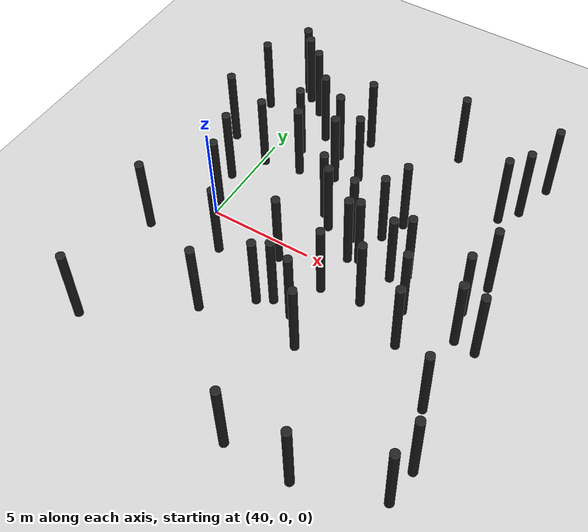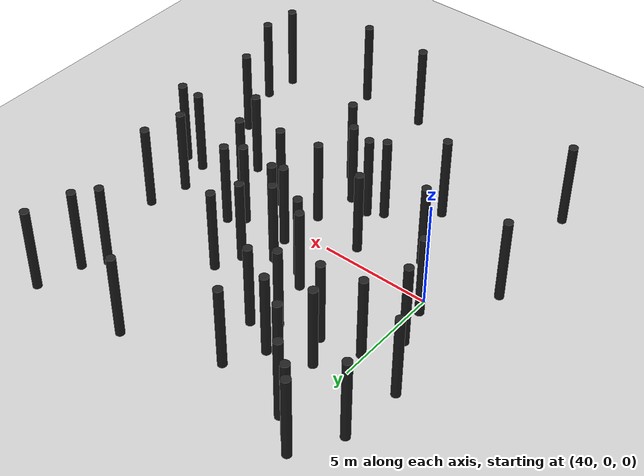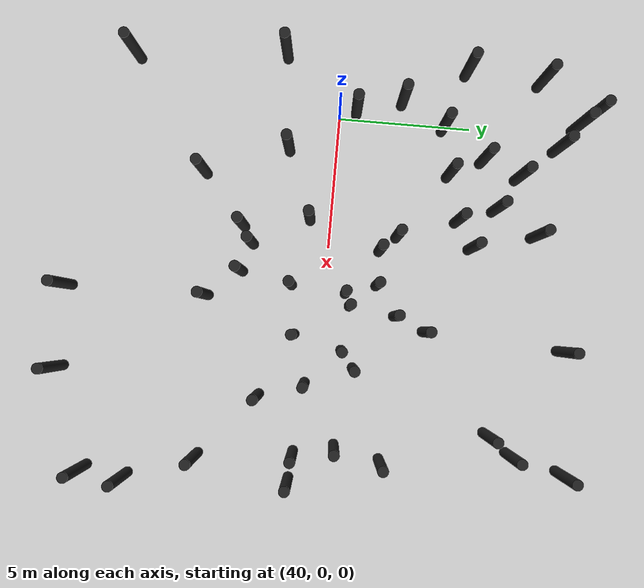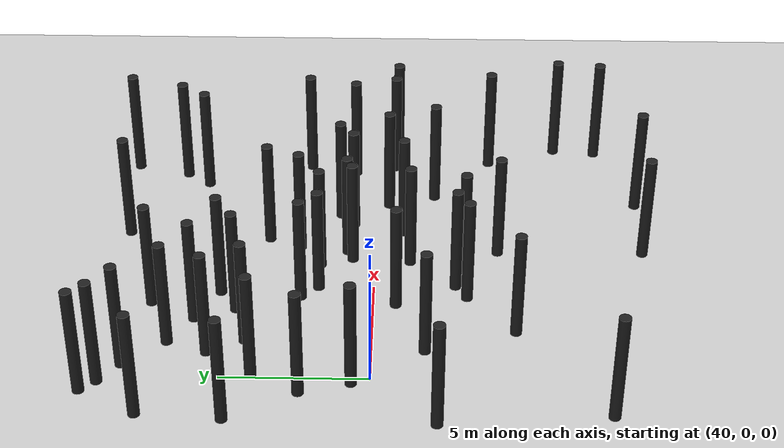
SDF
<sdf version="1.5">
 <world name="default">
  <model name="ground_plane">
   <static>1</static>
   <link name="link">
    <collision name="collision">
     <geometry><plane><normal>0 0 1</normal><size>200 200</size></plane></geometry>
     <surface><friction><ode><mu>100</mu><mu2>50</mu2></ode></friction></surface>
    </collision>
    <visual name="visual">
     <cast_shadows>0</cast_shadows>
     <geometry><plane><normal>0 0 1</normal><size>200 200</size></plane></geometry>
     <material>
      <script><uri>file://media/materials/scripts/gazebo.material</uri><name>Gazebo/Grey</name></script>
     </material>
    </visual>
   </link>
  </model>
  <model name="forest_clone_0">
   <pose>47.8774 3.82717 -0.003373 0 -0 0</pose>
   <static>1</static>
   <link name="cylinder::link">
    <inertial>
     <mass>1</mass>
     <inertia><ixx>0.083</ixx><ixy>0</ixy><ixz>0</ixz><iyy>0.083</iyy><iyz>0</iyz><izz>0.083</izz></inertia>
    </inertial>
    <collision name="collision">
     <geometry><cylinder><radius>0.2</radius><length>4</length></cylinder></geometry>
    </collision>
    <visual name="visual">
     <geometry><cylinder><radius>0.2</radius><length>4</length></cylinder></geometry>
     <material>
      <script><uri>file://media/materials/scripts/gazebo.material</uri><name>Gazebo/Black</name></script>
     </material>
    </visual>
    <pose>0 0 2 0 -0 0</pose>
   </link>
  </model>
  <model name="forest_clone_2">
   <pose>39.7784 0.625088 -0.004027 0 -0 0</pose>
   <static>1</static>
   <link name="cylinder::link">
    <inertial>
     <mass>1</mass>
     <inertia><ixx>0.083</ixx><ixy>0</ixy><ixz>0</ixz><iyy>0.083</iyy><iyz>0</iyz><izz>0.083</izz></inertia>
    </inertial>
    <collision name="collision">
     <geometry><cylinder><radius>0.2</radius><length>4</length></cylinder></geometry>
    </collision>
    <visual name="visual">
     <geometry><cylinder><radius>0.2</radius><length>4</length></cylinder></geometry>
     <material>
      <script><uri>file://media/materials/scripts/gazebo.material</uri><name>Gazebo/Black</name></script>
     </material>
    </visual>
    <pose>0 0 2 0 -0 0</pose>
   </link>
  </model>
  <model name="forest_clone_4">
   <pose>41.9186 4.26882 0.003569 0 -0 0</pose>
   <static>1</static>
   <link name="cylinder::link">
    <inertial>
     <mass>1</mass>
     <inertia><ixx>0.083</ixx><ixy>0</ixy><ixz>0</ixz><iyy>0.083</iyy><iyz>0</iyz><izz>0.083</izz></inertia>
    </inertial>
    <collision name="collision">
     <geometry><cylinder><radius>0.2</radius><length>4</length></cylinder></geometry>
    </collision>
    <visual name="visual">
     <geometry><cylinder><radius>0.2</radius><length>4</length></cylinder></geometry>
     <material>
      <script><uri>file://media/materials/scripts/gazebo.material</uri><name>Gazebo/Black</name></script>
     </material>
    </visual>
    <pose>0 0 2 0 -0 0</pose>
   </link>
  </model>
  <model name="forest_clone_6">
   <pose>51.4846 6.42449 0.004474 0 -0 0</pose>
   <static>1</static>
   <link name="cylinder::link">
    <inertial>
     <mass>1</mass>
     <inertia><ixx>0.083</ixx><ixy>0</ixy><ixz>0</ixz><iyy>0.083</iyy><iyz>0</iyz><izz>0.083</izz></inertia>
    </inertial>
    <collision name="collision">
     <geometry><cylinder><radius>0.2</radius><length>4</length></cylinder></geometry>
    </collision>
    <visual name="visual">
     <geometry><cylinder><radius>0.2</radius><length>4</length></cylinder></geometry>
     <material>
      <script><uri>file://media/materials/scripts/gazebo.material</uri><name>Gazebo/Black</name></script>
     </material>
    </visual>
    <pose>0 0 2 0 -0 0</pose>
   </link>
  </model>
  <model name="forest_clone_9">
   <pose>48.8325 0.794509 0.003333 0 -0 0</pose>
   <static>1</static>
   <link name="cylinder::link">
    <inertial>
     <mass>1</mass>
     <inertia><ixx>0.083</ixx><ixy>0</ixy><ixz>0</ixz><iyy>0.083</iyy><iyz>0</iyz><izz>0.083</izz></inertia>
    </inertial>
    <collision name="collision">
     <geometry><cylinder><radius>0.2</radius><length>4</length></cylinder></geometry>
    </collision>
    <visual name="visual">
     <geometry><cylinder><radius>0.2</radius><length>4</length></cylinder></geometry>
     <material>
      <script><uri>file://media/materials/scripts/gazebo.material</uri><name>Gazebo/Black</name></script>
     </material>
    </visual>
    <pose>0 0 2 0 -0 0</pose>
   </link>
  </model>
  <model name="forest_clone_20">
   <pose>40.1537 3.9289 0.004832 0 -0 0</pose>
   <static>1</static>
   <link name="cylinder::link">
    <inertial>
     <mass>1</mass>
     <inertia><ixx>0.083</ixx><ixy>0</ixy><ixz>0</ixz><iyy>0.083</iyy><iyz>0</iyz><izz>0.083</izz></inertia>
    </inertial>
    <collision name="collision">
     <geometry><cylinder><radius>0.2</radius><length>4</length></cylinder></geometry>
    </collision>
    <visual name="visual">
     <geometry><cylinder><radius>0.2</radius><length>4</length></cylinder></geometry>
     <material>
      <script><uri>file://media/materials/scripts/gazebo.material</uri><name>Gazebo/Black</name></script>
     </material>
    </visual>
    <pose>0 0 2 0 -0 0</pose>
   </link>
  </model>
  <model name="forest_clone_32">
   <pose>46.2905 1.91843 0.004142 0 -0 0</pose>
   <static>1</static>
   <link name="cylinder::link">
    <inertial>
     <mass>1</mass>
     <inertia><ixx>0.083</ixx><ixy>0</ixy><ixz>0</ixz><iyy>0.083</iyy><iyz>0</iyz><izz>0.083</izz></inertia>
    </inertial>
    <collision name="collision">
     <geometry><cylinder><radius>0.2</radius><length>4</length></cylinder></geometry>
    </collision>
    <visual name="visual">
     <geometry><cylinder><radius>0.2</radius><length>4</length></cylinder></geometry>
     <material>
      <script><uri>file://media/materials/scripts/gazebo.material</uri><name>Gazebo/Black</name></script>
     </material>
    </visual>
    <pose>0 0 2 0 -0 0</pose>
   </link>
  </model>
  <model name="forest_clone_33">
   <pose>37.8248 -2.16475 0.001127 0 -0 0</pose>
   <static>1</static>
   <link name="cylinder::link">
    <inertial>
     <mass>1</mass>
     <inertia><ixx>0.083</ixx><ixy>0</ixy><ixz>0</ixz><iyy>0.083</iyy><iyz>0</iyz><izz>0.083</izz></inertia>
    </inertial>
    <collision name="collision">
     <geometry><cylinder><radius>0.2</radius><length>4</length></cylinder></geometry>
    </collision>
    <visual name="visual">
     <geometry><cylinder><radius>0.2</radius><length>4</length></cylinder></geometry>
     <material>
      <script><uri>file://media/materials/scripts/gazebo.material</uri><name>Gazebo/Black</name></script>
     </material>
    </visual>
    <pose>0 0 2 0 -0 0</pose>
   </link>
  </model>
  <model name="forest_clone_35">
   <pose>38.3017 -7.80817 0.004289 0 -0 0</pose>
   <static>1</static>
   <link name="cylinder::link">
    <inertial>
     <mass>1</mass>
     <inertia><ixx>0.083</ixx><ixy>0</ixy><ixz>0</ixz><iyy>0.083</iyy><iyz>0</iyz><izz>0.083</izz></inertia>
    </inertial>
    <collision name="collision">
     <geometry><cylinder><radius>0.2</radius><length>4</length></cylinder></geometry>
    </collision>
    <visual name="visual">
     <geometry><cylinder><radius>0.2</radius><length>4</length></cylinder></geometry>
     <material>
      <script><uri>file://media/materials/scripts/gazebo.material</uri><name>Gazebo/Black</name></script>
     </material>
    </visual>
    <pose>0 0 2 0 -0 0</pose>
   </link>
  </model>
  <model name="forest_clone_39">
   <pose>41.8105 6.88139 -0.00208 0 -0 0</pose>
   <static>1</static>
   <link name="cylinder::link">
    <inertial>
     <mass>1</mass>
     <inertia><ixx>0.083</ixx><ixy>0</ixy><ixz>0</ixz><iyy>0.083</iyy><iyz>0</iyz><izz>0.083</izz></inertia>
    </inertial>
    <collision name="collision">
     <geometry><cylinder><radius>0.2</radius><length>4</length></cylinder></geometry>
    </collision>
    <visual name="visual">
     <geometry><cylinder><radius>0.2</radius><length>4</length></cylinder></geometry>
     <material>
      <script><uri>file://media/materials/scripts/gazebo.material</uri><name>Gazebo/Black</name></script>
     </material>
    </visual>
    <pose>0 0 2 0 -0 0</pose>
   </link>
  </model>
  <model name="forest_clone_40">
   <pose>41.2674 5.5002 0.002673 0 -0 0</pose>
   <static>1</static>
   <link name="cylinder::link">
    <inertial>
     <mass>1</mass>
     <inertia><ixx>0.083</ixx><ixy>0</ixy><ixz>0</ixz><iyy>0.083</iyy><iyz>0</iyz><izz>0.083</izz></inertia>
    </inertial>
    <collision name="collision">
     <geometry><cylinder><radius>0.2</radius><length>4</length></cylinder></geometry>
    </collision>
    <visual name="visual">
     <geometry><cylinder><radius>0.2</radius><length>4</length></cylinder></geometry>
     <material>
      <script><uri>file://media/materials/scripts/gazebo.material</uri><name>Gazebo/Black</name></script>
     </material>
    </visual>
    <pose>0 0 2 0 -0 0</pose>
   </link>
  </model>
  <model name="forest_clone_41">
   <pose>44.9711 1.92104 -0.002985 0 -0 0</pose>
   <static>1</static>
   <link name="cylinder::link">
    <inertial>
     <mass>1</mass>
     <inertia><ixx>0.083</ixx><ixy>0</ixy><ixz>0</ixz><iyy>0.083</iyy><iyz>0</iyz><izz>0.083</izz></inertia>
    </inertial>
    <collision name="collision">
     <geometry><cylinder><radius>0.2</radius><length>4</length></cylinder></geometry>
    </collision>
    <visual name="visual">
     <geometry><cylinder><radius>0.2</radius><length>4</length></cylinder></geometry>
     <material>
      <script><uri>file://media/materials/scripts/gazebo.material</uri><name>Gazebo/Black</name></script>
     </material>
    </visual>
    <pose>0 0 2 0 -0 0</pose>
   </link>
  </model>
  <model name="forest_clone_43">
   <pose>52.1522 7.30841 -0.000244 0 -0 0</pose>
   <static>1</static>
   <link name="cylinder::link">
    <inertial>
     <mass>1</mass>
     <inertia><ixx>0.083</ixx><ixy>0</ixy><ixz>0</ixz><iyy>0.083</iyy><iyz>0</iyz><izz>0.083</izz></inertia>
    </inertial>
    <collision name="collision">
     <geometry><cylinder><radius>0.2</radius><length>4</length></cylinder></geometry>
    </collision>
    <visual name="visual">
     <geometry><cylinder><radius>0.2</radius><length>4</length></cylinder></geometry>
     <material>
      <script><uri>file://media/materials/scripts/gazebo.material</uri><name>Gazebo/Black</name></script>
     </material>
    </visual>
    <pose>0 0 2 0 -0 0</pose>
   </link>
  </model>
  <model name="forest_clone_45">
   <pose>39.2487 9.43692 0.00181 0 -0 0</pose>
   <static>1</static>
   <link name="cylinder::link">
    <inertial>
     <mass>1</mass>
     <inertia><ixx>0.083</ixx><ixy>0</ixy><ixz>0</ixz><iyy>0.083</iyy><iyz>0</iyz><izz>0.083</izz></inertia>
    </inertial>
    <collision name="collision">
     <geometry><cylinder><radius>0.2</radius><length>4</length></cylinder></geometry>
    </collision>
    <visual name="visual">
     <geometry><cylinder><radius>0.2</radius><length>4</length></cylinder></geometry>
     <material>
      <script><uri>file://media/materials/scripts/gazebo.material</uri><name>Gazebo/Black</name></script>
     </material>
    </visual>
    <pose>0 0 2 0 -0 0</pose>
   </link>
  </model>
  <model name="forest_clone_46">
   <pose>50.1674 -0.477466 0.002206 0 -0 0</pose>
   <static>1</static>
   <link name="cylinder::link">
    <inertial>
     <mass>1</mass>
     <inertia><ixx>0.083</ixx><ixy>0</ixy><ixz>0</ixz><iyy>0.083</iyy><iyz>0</iyz><izz>0.083</izz></inertia>
    </inertial>
    <collision name="collision">
     <geometry><cylinder><radius>0.2</radius><length>4</length></cylinder></geometry>
    </collision>
    <visual name="visual">
     <geometry><cylinder><radius>0.2</radius><length>4</length></cylinder></geometry>
     <material>
      <script><uri>file://media/materials/scripts/gazebo.material</uri><name>Gazebo/Black</name></script>
     </material>
    </visual>
    <pose>0 0 2 0 -0 0</pose>
   </link>
  </model>
  <model name="forest_clone_47">
   <pose>50.2921 -9.67215 0.004809 0 -0 0</pose>
   <static>1</static>
   <link name="cylinder::link">
    <inertial>
     <mass>1</mass>
     <inertia><ixx>0.083</ixx><ixy>0</ixy><ixz>0</ixz><iyy>0.083</iyy><iyz>0</iyz><izz>0.083</izz></inertia>
    </inertial>
    <collision name="collision">
     <geometry><cylinder><radius>0.2</radius><length>4</length></cylinder></geometry>
    </collision>
    <visual name="visual">
     <geometry><cylinder><radius>0.2</radius><length>4</length></cylinder></geometry>
     <material>
      <script><uri>file://media/materials/scripts/gazebo.material</uri><name>Gazebo/Black</name></script>
     </material>
    </visual>
    <pose>0 0 2 0 -0 0</pose>
   </link>
  </model>
  <model name="forest_clone_48">
   <pose>47.1435 0.969786 -0.003645 0 -0 0</pose>
   <static>1</static>
   <link name="cylinder::link">
    <inertial>
     <mass>1</mass>
     <inertia><ixx>0.083</ixx><ixy>0</ixy><ixz>0</ixz><iyy>0.083</iyy><iyz>0</iyz><izz>0.083</izz></inertia>
    </inertial>
    <collision name="collision">
     <geometry><cylinder><radius>0.2</radius><length>4</length></cylinder></geometry>
    </collision>
    <visual name="visual">
     <geometry><cylinder><radius>0.2</radius><length>4</length></cylinder></geometry>
     <material>
      <script><uri>file://media/materials/scripts/gazebo.material</uri><name>Gazebo/Black</name></script>
     </material>
    </visual>
    <pose>0 0 2 0 -0 0</pose>
   </link>
  </model>
  <model name="forest_clone_49">
   <pose>39.7175 8.92321 0.003022 0 -0 0</pose>
   <static>1</static>
   <link name="cylinder::link">
    <inertial>
     <mass>1</mass>
     <inertia><ixx>0.083</ixx><ixy>0</ixy><ixz>0</ixz><iyy>0.083</iyy><iyz>0</iyz><izz>0.083</izz></inertia>
    </inertial>
    <collision name="collision">
     <geometry><cylinder><radius>0.2</radius><length>4</length></cylinder></geometry>
    </collision>
    <visual name="visual">
     <geometry><cylinder><radius>0.2</radius><length>4</length></cylinder></geometry>
     <material>
      <script><uri>file://media/materials/scripts/gazebo.material</uri><name>Gazebo/Black</name></script>
     </material>
    </visual>
    <pose>0 0 2 0 -0 0</pose>
   </link>
  </model>
  <model name="forest_clone_50">
   <pose>42.5434 -4.87461 0.002801 0 -0 0</pose>
   <static>1</static>
   <link name="cylinder::link">
    <inertial>
     <mass>1</mass>
     <inertia><ixx>0.083</ixx><ixy>0</ixy><ixz>0</ixz><iyy>0.083</iyy><iyz>0</iyz><izz>0.083</izz></inertia>
    </inertial>
    <collision name="collision">
     <geometry><cylinder><radius>0.2</radius><length>4</length></cylinder></geometry>
    </collision>
    <visual name="visual">
     <geometry><cylinder><radius>0.2</radius><length>4</length></cylinder></geometry>
     <material>
      <script><uri>file://media/materials/scripts/gazebo.material</uri><name>Gazebo/Black</name></script>
     </material>
    </visual>
    <pose>0 0 2 0 -0 0</pose>
   </link>
  </model>
  <model name="forest_clone_54">
   <pose>47.2161 -9.63317 -0.004522 0 -0 0</pose>
   <static>1</static>
   <link name="cylinder::link">
    <inertial>
     <mass>1</mass>
     <inertia><ixx>0.083</ixx><ixy>0</ixy><ixz>0</ixz><iyy>0.083</iyy><iyz>0</iyz><izz>0.083</izz></inertia>
    </inertial>
    <collision name="collision">
     <geometry><cylinder><radius>0.2</radius><length>4</length></cylinder></geometry>
    </collision>
    <visual name="visual">
     <geometry><cylinder><radius>0.2</radius><length>4</length></cylinder></geometry>
     <material>
      <script><uri>file://media/materials/scripts/gazebo.material</uri><name>Gazebo/Black</name></script>
     </material>
    </visual>
    <pose>0 0 2 0 -0 0</pose>
   </link>
  </model>
  <model name="forest_clone_55">
   <pose>38.1316 7.47372 0.000722 0 -0 0</pose>
   <static>1</static>
   <link name="cylinder::link">
    <inertial>
     <mass>1</mass>
     <inertia><ixx>0.083</ixx><ixy>0</ixy><ixz>0</ixz><iyy>0.083</iyy><iyz>0</iyz><izz>0.083</izz></inertia>
    </inertial>
    <collision name="collision">
     <geometry><cylinder><radius>0.2</radius><length>4</length></cylinder></geometry>
    </collision>
    <visual name="visual">
     <geometry><cylinder><radius>0.2</radius><length>4</length></cylinder></geometry>
     <material>
      <script><uri>file://media/materials/scripts/gazebo.material</uri><name>Gazebo/Black</name></script>
     </material>
    </visual>
    <pose>0 0 2 0 -0 0</pose>
   </link>
  </model>
  <model name="forest_clone_61">
   <pose>44.6094 5.31662 -7.9e-05 0 -0 0</pose>
   <static>1</static>
   <link name="cylinder::link">
    <inertial>
     <mass>1</mass>
     <inertia><ixx>0.083</ixx><ixy>0</ixy><ixz>0</ixz><iyy>0.083</iyy><iyz>0</iyz><izz>0.083</izz></inertia>
    </inertial>
    <collision name="collision">
     <geometry><cylinder><radius>0.2</radius><length>4</length></cylinder></geometry>
    </collision>
    <visual name="visual">
     <geometry><cylinder><radius>0.2</radius><length>4</length></cylinder></geometry>
     <material>
      <script><uri>file://media/materials/scripts/gazebo.material</uri><name>Gazebo/Black</name></script>
     </material>
    </visual>
    <pose>0 0 2 0 -0 0</pose>
   </link>
  </model>
  <model name="forest_clone_63">
   <pose>49.4635 1.2827 0.003801 0 -0 0</pose>
   <static>1</static>
   <link name="cylinder::link">
    <inertial>
     <mass>1</mass>
     <inertia><ixx>0.083</ixx><ixy>0</ixy><ixz>0</ixz><iyy>0.083</iyy><iyz>0</iyz><izz>0.083</izz></inertia>
    </inertial>
    <collision name="collision">
     <geometry><cylinder><radius>0.2</radius><length>4</length></cylinder></geometry>
    </collision>
    <visual name="visual">
     <geometry><cylinder><radius>0.2</radius><length>4</length></cylinder></geometry>
     <material>
      <script><uri>file://media/materials/scripts/gazebo.material</uri><name>Gazebo/Black</name></script>
     </material>
    </visual>
    <pose>0 0 2 0 -0 0</pose>
   </link>
  </model>
  <model name="forest_clone_64">
   <pose>43.6352 4.71826 0.003077 0 -0 0</pose>
   <static>1</static>
   <link name="cylinder::link">
    <inertial>
     <mass>1</mass>
     <inertia><ixx>0.083</ixx><ixy>0</ixy><ixz>0</ixz><iyy>0.083</iyy><iyz>0</iyz><izz>0.083</izz></inertia>
    </inertial>
    <collision name="collision">
     <geometry><cylinder><radius>0.2</radius><length>4</length></cylinder></geometry>
    </collision>
    <visual name="visual">
     <geometry><cylinder><radius>0.2</radius><length>4</length></cylinder></geometry>
     <material>
      <script><uri>file://media/materials/scripts/gazebo.material</uri><name>Gazebo/Black</name></script>
     </material>
    </visual>
    <pose>0 0 2 0 -0 0</pose>
   </link>
  </model>
  <model name="forest_clone_66">
   <pose>52.6861 9.25518 0.00349 0 -0 0</pose>
   <static>1</static>
   <link name="cylinder::link">
    <inertial>
     <mass>1</mass>
     <inertia><ixx>0.083</ixx><ixy>0</ixy><ixz>0</ixz><iyy>0.083</iyy><iyz>0</iyz><izz>0.083</izz></inertia>
    </inertial>
    <collision name="collision">
     <geometry><cylinder><radius>0.2</radius><length>4</length></cylinder></geometry>
    </collision>
    <visual name="visual">
     <geometry><cylinder><radius>0.2</radius><length>4</length></cylinder></geometry>
     <material>
      <script><uri>file://media/materials/scripts/gazebo.material</uri><name>Gazebo/Black</name></script>
     </material>
    </visual>
    <pose>0 0 2 0 -0 0</pose>
   </link>
  </model>
  <model name="forest_clone_67">
   <pose>41.4226 -1.78511 0.049028 0 -0 0</pose>
   <static>1</static>
   <link name="cylinder::link">
    <inertial>
     <mass>1</mass>
     <inertia><ixx>0.083</ixx><ixy>0</ixy><ixz>0</ixz><iyy>0.083</iyy><iyz>0</iyz><izz>0.083</izz></inertia>
    </inertial>
    <collision name="collision">
     <geometry><cylinder><radius>0.2</radius><length>4</length></cylinder></geometry>
    </collision>
    <visual name="visual">
     <geometry><cylinder><radius>0.2</radius><length>4</length></cylinder></geometry>
     <material>
      <script><uri>file://media/materials/scripts/gazebo.material</uri><name>Gazebo/Black</name></script>
     </material>
    </visual>
    <pose>0 0 2 0 -0 0</pose>
   </link>
  </model>
  <model name="forest_clone_68">
   <pose>52.4022 0.812248 -0.004377 0 -0 0</pose>
   <static>1</static>
   <link name="cylinder::link">
    <inertial>
     <mass>1</mass>
     <inertia><ixx>0.083</ixx><ixy>0</ixy><ixz>0</ixz><iyy>0.083</iyy><iyz>0</iyz><izz>0.083</izz></inertia>
    </inertial>
    <collision name="collision">
     <geometry><cylinder><radius>0.2</radius><length>4</length></cylinder></geometry>
    </collision>
    <visual name="visual">
     <geometry><cylinder><radius>0.2</radius><length>4</length></cylinder></geometry>
     <material>
      <script><uri>file://media/materials/scripts/gazebo.material</uri><name>Gazebo/Black</name></script>
     </material>
    </visual>
    <pose>0 0 2 0 -0 0</pose>
   </link>
  </model>
  <model name="forest_clone_70">
   <pose>44.4505 -3.25783 -0.004054 0 -0 0</pose>
   <static>1</static>
   <link name="cylinder::link">
    <inertial>
     <mass>1</mass>
     <inertia><ixx>0.083</ixx><ixy>0</ixy><ixz>0</ixz><iyy>0.083</iyy><iyz>0</iyz><izz>0.083</izz></inertia>
    </inertial>
    <collision name="collision">
     <geometry><cylinder><radius>0.2</radius><length>4</length></cylinder></geometry>
    </collision>
    <visual name="visual">
     <geometry><cylinder><radius>0.2</radius><length>4</length></cylinder></geometry>
     <material>
      <script><uri>file://media/materials/scripts/gazebo.material</uri><name>Gazebo/Black</name></script>
     </material>
    </visual>
    <pose>0 0 2 0 -0 0</pose>
   </link>
  </model>
  <model name="forest_clone_72">
   <pose>53.7753 -0.792174 -0.003367 0 -0 0</pose>
   <static>1</static>
   <link name="cylinder::link">
    <inertial>
     <mass>1</mass>
     <inertia><ixx>0.083</ixx><ixy>0</ixy><ixz>0</ixz><iyy>0.083</iyy><iyz>0</iyz><izz>0.083</izz></inertia>
    </inertial>
    <collision name="collision">
     <geometry><cylinder><radius>0.2</radius><length>4</length></cylinder></geometry>
    </collision>
    <visual name="visual">
     <geometry><cylinder><radius>0.2</radius><length>4</length></cylinder></geometry>
     <material>
      <script><uri>file://media/materials/scripts/gazebo.material</uri><name>Gazebo/Black</name></script>
     </material>
    </visual>
    <pose>0 0 2 0 -0 0</pose>
   </link>
  </model>
  <model name="forest_clone_73">
   <pose>43.093 6.10205 -0.001918 0 -0 0</pose>
   <static>1</static>
   <link name="cylinder::link">
    <inertial>
     <mass>1</mass>
     <inertia><ixx>0.083</ixx><ixy>0</ixy><ixz>0</ixz><iyy>0.083</iyy><iyz>0</iyz><izz>0.083</izz></inertia>
    </inertial>
    <collision name="collision">
     <geometry><cylinder><radius>0.2</radius><length>4</length></cylinder></geometry>
    </collision>
    <visual name="visual">
     <geometry><cylinder><radius>0.2</radius><length>4</length></cylinder></geometry>
     <material>
      <script><uri>file://media/materials/scripts/gazebo.material</uri><name>Gazebo/Black</name></script>
     </material>
    </visual>
    <pose>0 0 2 0 -0 0</pose>
   </link>
  </model>
  <model name="forest_clone_74">
   <pose>40.6022 8.25454 -0.004001 0 -0 0</pose>
   <static>1</static>
   <link name="cylinder::link">
    <inertial>
     <mass>1</mass>
     <inertia><ixx>0.083</ixx><ixy>0</ixy><ixz>0</ixz><iyy>0.083</iyy><iyz>0</iyz><izz>0.083</izz></inertia>
    </inertial>
    <collision name="collision">
     <geometry><cylinder><radius>0.2</radius><length>4</length></cylinder></geometry>
    </collision>
    <visual name="visual">
     <geometry><cylinder><radius>0.2</radius><length>4</length></cylinder></geometry>
     <material>
      <script><uri>file://media/materials/scripts/gazebo.material</uri><name>Gazebo/Black</name></script>
     </material>
    </visual>
    <pose>0 0 2 0 -0 0</pose>
   </link>
  </model>
  <model name="forest_clone_77">
   <pose>47.3836 2.68623 -0.003206 0 -0 0</pose>
   <static>1</static>
   <link name="cylinder::link">
    <inertial>
     <mass>1</mass>
     <inertia><ixx>0.083</ixx><ixy>0</ixy><ixz>0</ixz><iyy>0.083</iyy><iyz>0</iyz><izz>0.083</izz></inertia>
    </inertial>
    <collision name="collision">
     <geometry><cylinder><radius>0.2</radius><length>4</length></cylinder></geometry>
    </collision>
    <visual name="visual">
     <geometry><cylinder><radius>0.2</radius><length>4</length></cylinder></geometry>
     <material>
      <script><uri>file://media/materials/scripts/gazebo.material</uri><name>Gazebo/Black</name></script>
     </material>
    </visual>
    <pose>0 0 2 0 -0 0</pose>
   </link>
  </model>
  <model name="forest_clone_80">
   <pose>39.2798 2.32573 0.000206 0 -0 0</pose>
   <static>1</static>
   <link name="cylinder::link">
    <inertial>
     <mass>1</mass>
     <inertia><ixx>0.083</ixx><ixy>0</ixy><ixz>0</ixz><iyy>0.083</iyy><iyz>0</iyz><izz>0.083</izz></inertia>
    </inertial>
    <collision name="collision">
     <geometry><cylinder><radius>0.2</radius><length>4</length></cylinder></geometry>
    </collision>
    <visual name="visual">
     <geometry><cylinder><radius>0.2</radius><length>4</length></cylinder></geometry>
     <material>
      <script><uri>file://media/materials/scripts/gazebo.material</uri><name>Gazebo/Black</name></script>
     </material>
    </visual>
    <pose>0 0 2 0 -0 0</pose>
   </link>
  </model>
  <model name="forest_clone_81">
   <pose>50.7425 -2.16861 0.000282 0 -0 0</pose>
   <static>1</static>
   <link name="cylinder::link">
    <inertial>
     <mass>1</mass>
     <inertia><ixx>0.083</ixx><ixy>0</ixy><ixz>0</ixz><iyy>0.083</iyy><iyz>0</iyz><izz>0.083</izz></inertia>
    </inertial>
    <collision name="collision">
     <geometry><cylinder><radius>0.2</radius><length>4</length></cylinder></geometry>
    </collision>
    <visual name="visual">
     <geometry><cylinder><radius>0.2</radius><length>4</length></cylinder></geometry>
     <material>
      <script><uri>file://media/materials/scripts/gazebo.material</uri><name>Gazebo/Black</name></script>
     </material>
    </visual>
    <pose>0 0 2 0 -0 0</pose>
   </link>
  </model>
  <model name="forest_clone_96">
   <pose>37.9446 4.66785 -0.004689 0 -0 0</pose>
   <static>1</static>
   <link name="cylinder::link">
    <inertial>
     <mass>1</mass>
     <inertia><ixx>0.083</ixx><ixy>0</ixy><ixz>0</ixz><iyy>0.083</iyy><iyz>0</iyz><izz>0.083</izz></inertia>
    </inertial>
    <collision name="collision">
     <geometry><cylinder><radius>0.2</radius><length>4</length></cylinder></geometry>
    </collision>
    <visual name="visual">
     <geometry><cylinder><radius>0.2</radius><length>4</length></cylinder></geometry>
     <material>
      <script><uri>file://media/materials/scripts/gazebo.material</uri><name>Gazebo/Black</name></script>
     </material>
    </visual>
    <pose>0 0 2 0 -0 0</pose>
   </link>
  </model>
  <model name="forest_clone_104">
   <pose>43.968 7.66635 -0.002049 0 -0 0</pose>
   <static>1</static>
   <link name="cylinder::link">
    <inertial>
     <mass>1</mass>
     <inertia><ixx>0.083</ixx><ixy>0</ixy><ixz>0</ixz><iyy>0.083</iyy><iyz>0</iyz><izz>0.083</izz></inertia>
    </inertial>
    <collision name="collision">
     <geometry><cylinder><radius>0.2</radius><length>4</length></cylinder></geometry>
    </collision>
    <visual name="visual">
     <geometry><cylinder><radius>0.2</radius><length>4</length></cylinder></geometry>
     <material>
      <script><uri>file://media/materials/scripts/gazebo.material</uri><name>Gazebo/Black</name></script>
     </material>
    </visual>
    <pose>0 0 2 0 -0 0</pose>
   </link>
  </model>
  <model name="forest_clone_105">
   <pose>52.7716 -0.697124 0.001544 0 -0 0</pose>
   <static>1</static>
   <link name="cylinder::link">
    <inertial>
     <mass>1</mass>
     <inertia><ixx>0.083</ixx><ixy>0</ixy><ixz>0</ixz><iyy>0.083</iyy><iyz>0</iyz><izz>0.083</izz></inertia>
    </inertial>
    <collision name="collision">
     <geometry><cylinder><radius>0.2</radius><length>4</length></cylinder></geometry>
    </collision>
    <visual name="visual">
     <geometry><cylinder><radius>0.2</radius><length>4</length></cylinder></geometry>
     <material>
      <script><uri>file://media/materials/scripts/gazebo.material</uri><name>Gazebo/Black</name></script>
     </material>
    </visual>
    <pose>0 0 2 0 -0 0</pose>
   </link>
  </model>
  <model name="forest_clone_106">
   <pose>46.5252 -1.27453 0.00208 0 -0 0</pose>
   <static>1</static>
   <link name="cylinder::link">
    <inertial>
     <mass>1</mass>
     <inertia><ixx>0.083</ixx><ixy>0</ixy><ixz>0</ixz><iyy>0.083</iyy><iyz>0</iyz><izz>0.083</izz></inertia>
    </inertial>
    <collision name="collision">
     <geometry><cylinder><radius>0.2</radius><length>4</length></cylinder></geometry>
    </collision>
    <visual name="visual">
     <geometry><cylinder><radius>0.2</radius><length>4</length></cylinder></geometry>
     <material>
      <script><uri>file://media/materials/scripts/gazebo.material</uri><name>Gazebo/Black</name></script>
     </material>
    </visual>
    <pose>0 0 2 0 -0 0</pose>
   </link>
  </model>
  <model name="forest_clone_109">
   <pose>53.1486 -4.28164 0.002235 0 -0 0</pose>
   <static>1</static>
   <link name="cylinder::link">
    <inertial>
     <mass>1</mass>
     <inertia><ixx>0.083</ixx><ixy>0</ixy><ixz>0</ixz><iyy>0.083</iyy><iyz>0</iyz><izz>0.083</izz></inertia>
    </inertial>
    <collision name="collision">
     <geometry><cylinder><radius>0.2</radius><length>4</length></cylinder></geometry>
    </collision>
    <visual name="visual">
     <geometry><cylinder><radius>0.2</radius><length>4</length></cylinder></geometry>
     <material>
      <script><uri>file://media/materials/scripts/gazebo.material</uri><name>Gazebo/Black</name></script>
     </material>
    </visual>
    <pose>0 0 2 0 -0 0</pose>
   </link>
  </model>
  <model name="forest_clone_115">
   <pose>52.8012 2.5485 -0.001752 0 -0 0</pose>
   <static>1</static>
   <link name="cylinder::link">
    <inertial>
     <mass>1</mass>
     <inertia><ixx>0.083</ixx><ixy>0</ixy><ixz>0</ixz><iyy>0.083</iyy><iyz>0</iyz><izz>0.083</izz></inertia>
    </inertial>
    <collision name="collision">
     <geometry><cylinder><radius>0.2</radius><length>4</length></cylinder></geometry>
    </collision>
    <visual name="visual">
     <geometry><cylinder><radius>0.2</radius><length>4</length></cylinder></geometry>
     <material>
      <script><uri>file://media/materials/scripts/gazebo.material</uri><name>Gazebo/Black</name></script>
     </material>
    </visual>
    <pose>0 0 2 0 -0 0</pose>
   </link>
  </model>
  <model name="forest_clone_117">
   <pose>45.0954 -2.86696 0.000861 0 -0 0</pose>
   <static>1</static>
   <link name="cylinder::link">
    <inertial>
     <mass>1</mass>
     <inertia><ixx>0.083</ixx><ixy>0</ixy><ixz>0</ixz><iyy>0.083</iyy><iyz>0</iyz><izz>0.083</izz></inertia>
    </inertial>
    <collision name="collision">
     <geometry><cylinder><radius>0.2</radius><length>4</length></cylinder></geometry>
    </collision>
    <visual name="visual">
     <geometry><cylinder><radius>0.2</radius><length>4</length></cylinder></geometry>
     <material>
      <script><uri>file://media/materials/scripts/gazebo.material</uri><name>Gazebo/Black</name></script>
     </material>
    </visual>
    <pose>0 0 2 0 -0 0</pose>
   </link>
  </model>
  <model name="forest_clone_126">
   <pose>54.1045 -6.864 0.004809 0 -0 0</pose>
   <static>1</static>
   <link name="cylinder::link">
    <inertial>
     <mass>1</mass>
     <inertia><ixx>0.083</ixx><ixy>0</ixy><ixz>0</ixz><iyy>0.083</iyy><iyz>0</iyz><izz>0.083</izz></inertia>
    </inertial>
    <collision name="collision">
     <geometry><cylinder><radius>0.2</radius><length>4</length></cylinder></geometry>
    </collision>
    <visual name="visual">
     <geometry><cylinder><radius>0.2</radius><length>4</length></cylinder></geometry>
     <material>
      <script><uri>file://media/materials/scripts/gazebo.material</uri><name>Gazebo/Black</name></script>
     </material>
    </visual>
    <pose>0 0 2 0 -0 0</pose>
   </link>
  </model>
  <model name="forest_clone_130">
   <pose>48.1744 8.98215 0.001344 0 -0 0</pose>
   <static>1</static>
   <link name="cylinder::link">
    <inertial>
     <mass>1</mass>
     <inertia><ixx>0.083</ixx><ixy>0</ixy><ixz>0</ixz><iyy>0.083</iyy><iyz>0</iyz><izz>0.083</izz></inertia>
    </inertial>
    <collision name="collision">
     <geometry><cylinder><radius>0.2</radius><length>4</length></cylinder></geometry>
    </collision>
    <visual name="visual">
     <geometry><cylinder><radius>0.2</radius><length>4</length></cylinder></geometry>
     <material>
      <script><uri>file://media/materials/scripts/gazebo.material</uri><name>Gazebo/Black</name></script>
     </material>
    </visual>
    <pose>0 0 2 0 -0 0</pose>
   </link>
  </model>
  <model name="forest_clone_132">
   <pose>46.6772 0.777426 6.5e-05 0 -0 0</pose>
   <static>1</static>
   <link name="cylinder::link">
    <inertial>
     <mass>1</mass>
     <inertia><ixx>0.083</ixx><ixy>0</ixy><ixz>0</ixz><iyy>0.083</iyy><iyz>0</iyz><izz>0.083</izz></inertia>
    </inertial>
    <collision name="collision">
     <geometry><cylinder><radius>0.2</radius><length>4</length></cylinder></geometry>
    </collision>
    <visual name="visual">
     <geometry><cylinder><radius>0.2</radius><length>4</length></cylinder></geometry>
     <material>
      <script><uri>file://media/materials/scripts/gazebo.material</uri><name>Gazebo/Black</name></script>
     </material>
    </visual>
    <pose>0 0 2 0 -0 0</pose>
   </link>
  </model>
  <model name="forest_clone_133">
   <pose>47.1708 -4.41646 0.00027 0 -0 0</pose>
   <static>1</static>
   <link name="cylinder::link">
    <inertial>
     <mass>1</mass>
     <inertia><ixx>0.083</ixx><ixy>0</ixy><ixz>0</ixz><iyy>0.083</iyy><iyz>0</iyz><izz>0.083</izz></inertia>
    </inertial>
    <collision name="collision">
     <geometry><cylinder><radius>0.2</radius><length>4</length></cylinder></geometry>
    </collision>
    <visual name="visual">
     <geometry><cylinder><radius>0.2</radius><length>4</length></cylinder></geometry>
     <material>
      <script><uri>file://media/materials/scripts/gazebo.material</uri><name>Gazebo/Black</name></script>
     </material>
    </visual>
    <pose>0 0 2 0 -0 0</pose>
   </link>
  </model>
  <model name="forest_clone_136">
   <pose>53.9423 -8.43722 -0.001463 0 -0 0</pose>
   <static>1</static>
   <link name="cylinder::link">
    <inertial>
     <mass>1</mass>
     <inertia><ixx>0.083</ixx><ixy>0</ixy><ixz>0</ixz><iyy>0.083</iyy><iyz>0</iyz><izz>0.083</izz></inertia>
    </inertial>
    <collision name="collision">
     <geometry><cylinder><radius>0.2</radius><length>4</length></cylinder></geometry>
    </collision>
    <visual name="visual">
     <geometry><cylinder><radius>0.2</radius><length>4</length></cylinder></geometry>
     <material>
      <script><uri>file://media/materials/scripts/gazebo.material</uri><name>Gazebo/Black</name></script>
     </material>
    </visual>
    <pose>0 0 2 0 -0 0</pose>
   </link>
  </model>
  <model name="forest_clone_139">
   <pose>44.3969 2.5215 -0.000422 0 -0 0</pose>
   <static>1</static>
   <link name="cylinder::link">
    <inertial>
     <mass>1</mass>
     <inertia><ixx>0.083</ixx><ixy>0</ixy><ixz>0</ixz><iyy>0.083</iyy><iyz>0</iyz><izz>0.083</izz></inertia>
    </inertial>
    <collision name="collision">
     <geometry><cylinder><radius>0.2</radius><length>4</length></cylinder></geometry>
    </collision>
    <visual name="visual">
     <geometry><cylinder><radius>0.2</radius><length>4</length></cylinder></geometry>
     <material>
      <script><uri>file://media/materials/scripts/gazebo.material</uri><name>Gazebo/Black</name></script>
     </material>
    </visual>
    <pose>0 0 2 0 -0 0</pose>
   </link>
  </model>
  <model name="forest_clone_140">
   <pose>46.1598 -3.18791 0.003742 0 -0 0</pose>
   <static>1</static>
   <link name="cylinder::link">
    <inertial>
     <mass>1</mass>
     <inertia><ixx>0.083</ixx><ixy>0</ixy><ixz>0</ixz><iyy>0.083</iyy><iyz>0</iyz><izz>0.083</izz></inertia>
    </inertial>
    <collision name="collision">
     <geometry><cylinder><radius>0.2</radius><length>4</length></cylinder></geometry>
    </collision>
    <visual name="visual">
     <geometry><cylinder><radius>0.2</radius><length>4</length></cylinder></geometry>
     <material>
      <script><uri>file://media/materials/scripts/gazebo.material</uri><name>Gazebo/Black</name></script>
     </material>
    </visual>
    <pose>0 0 2 0 -0 0</pose>
   </link>
  </model>
  <model name="forest_clone_148">
   <pose>48.3748 -1.02433 0.004036 0 -0 0</pose>
   <static>1</static>
   <link name="cylinder::link">
    <inertial>
     <mass>1</mass>
     <inertia><ixx>0.083</ixx><ixy>0</ixy><ixz>0</ixz><iyy>0.083</iyy><iyz>0</iyz><izz>0.083</izz></inertia>
    </inertial>
    <collision name="collision">
     <geometry><cylinder><radius>0.2</radius><length>4</length></cylinder></geometry>
    </collision>
    <visual name="visual">
     <geometry><cylinder><radius>0.2</radius><length>4</length></cylinder></geometry>
     <material>
      <script><uri>file://media/materials/scripts/gazebo.material</uri><name>Gazebo/Black</name></script>
     </material>
    </visual>
    <pose>0 0 2 0 -0 0</pose>
   </link>
  </model>
  <model name="forest_clone_149">
   <pose>44.0073 -0.784622 -0.002064 0 -0 0</pose>
   <static>1</static>
   <link name="cylinder::link">
    <inertial>
     <mass>1</mass>
     <inertia><ixx>0.083</ixx><ixy>0</ixy><ixz>0</ixz><iyy>0.083</iyy><iyz>0</iyz><izz>0.083</izz></inertia>
    </inertial>
    <collision name="collision">
     <geometry><cylinder><radius>0.2</radius><length>4</length></cylinder></geometry>
    </collision>
    <visual name="visual">
     <geometry><cylinder><radius>0.2</radius><length>4</length></cylinder></geometry>
     <material>
      <script><uri>file://media/materials/scripts/gazebo.material</uri><name>Gazebo/Black</name></script>
     </material>
    </visual>
    <pose>0 0 2 0 -0 0</pose>
   </link>
  </model>
 </world>
</sdf>
